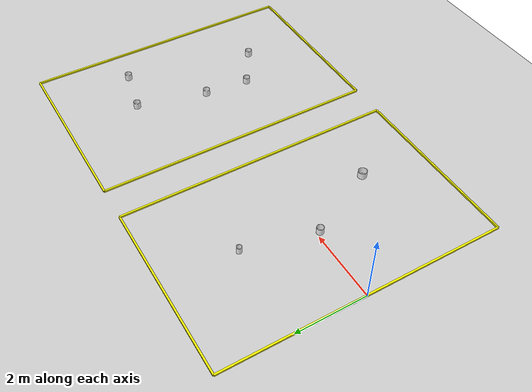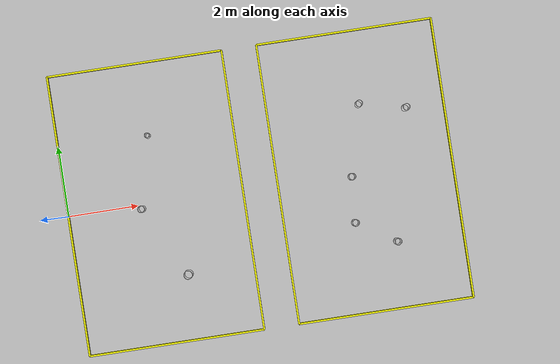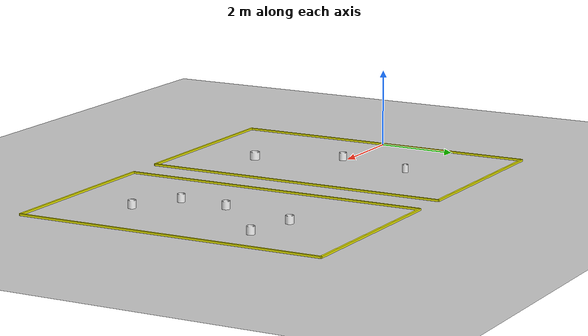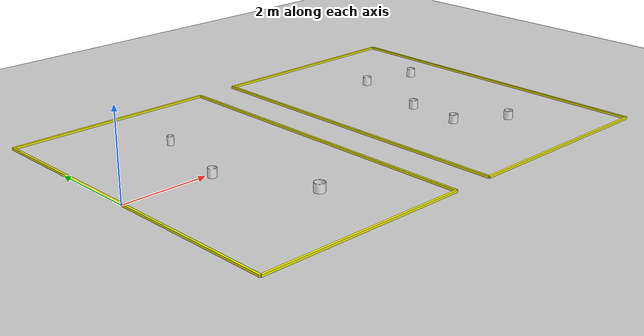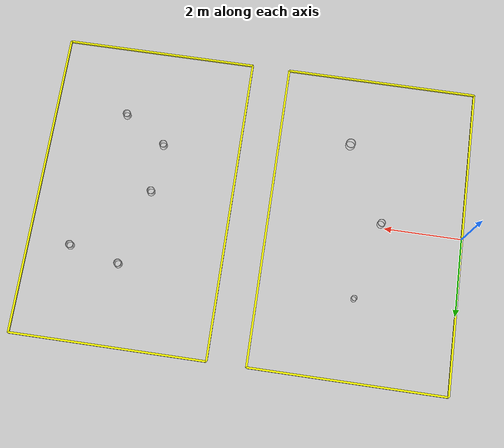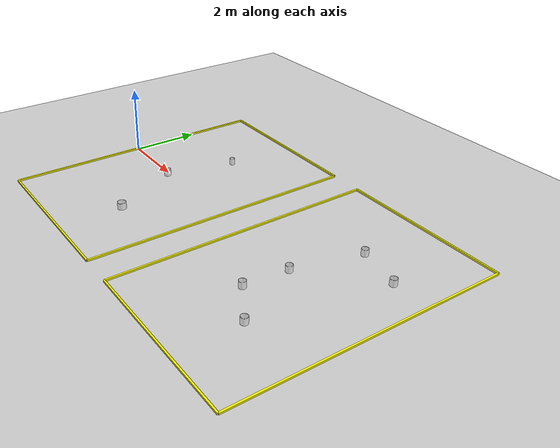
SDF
<?xml version="1.0" encoding="UTF-8"?>
<sdf version="1.9">
  <world name="default">
    <physics type="ode">
      <max_step_size>0.004</max_step_size>
      <real_time_factor>1.0</real_time_factor>
      <real_time_update_rate>250</real_time_update_rate>
    </physics>
    <plugin name="gz::sim::systems::Physics" filename="gz-sim-physics-system"/>
    <plugin name="gz::sim::systems::UserCommands" filename="gz-sim-user-commands-system"/>
    <plugin name="gz::sim::systems::SceneBroadcaster" filename="gz-sim-scene-broadcaster-system"/>
    <plugin name="gz::sim::systems::Contact" filename="gz-sim-contact-system"/>
    <plugin name="gz::sim::systems::Imu" filename="gz-sim-imu-system"/>
    <plugin name="gz::sim::systems::AirPressure" filename="gz-sim-air-pressure-system"/>
    <plugin name="gz::sim::systems::ApplyLinkWrench" filename="gz-sim-apply-link-wrench-system"/>
    <plugin name="gz::sim::systems::NavSat" filename="gz-sim-navsat-system"/>
    <plugin name="gz::sim::systems::Sensors" filename="gz-sim-sensors-system">
      <render_engine>ogre2</render_engine>
    </plugin>
    <gui fullscreen="false">
      <!-- 3D scene -->
      <plugin filename="MinimalScene" name="3D View">
        <gz-gui>
          <title>3D View</title>
          <property type="bool" key="showTitleBar">false</property>
          <property type="string" key="state">docked</property>
        </gz-gui>
        <engine>ogre2</engine>
        <scene>scene</scene>
        <ambient_light>0.4 0.4 0.4</ambient_light>
        <background_color>0.8 0.8 0.8</background_color>
        <camera_pose>-6 0 6 0 0.5 0</camera_pose>
        <camera_clip>
          <near>0.25</near>
          <far>25000</far>
        </camera_clip>
      </plugin>
      <!-- Plugins that add functionality to the scene -->
      <plugin filename="EntityContextMenuPlugin" name="Entity context menu">
        <gz-gui>
          <property key="state" type="string">floating</property>
          <property key="width" type="double">5</property>
          <property key="height" type="double">5</property>
          <property key="showTitleBar" type="bool">false</property>
        </gz-gui>
      </plugin>
      <plugin filename="GzSceneManager" name="Scene Manager">
        <gz-gui>
          <property key="resizable" type="bool">false</property>
          <property key="width" type="double">5</property>
          <property key="height" type="double">5</property>
          <property key="state" type="string">floating</property>
          <property key="showTitleBar" type="bool">false</property>
        </gz-gui>
      </plugin>
      <plugin filename="InteractiveViewControl" name="Interactive view control">
        <gz-gui>
          <property key="resizable" type="bool">false</property>
          <property key="width" type="double">5</property>
          <property key="height" type="double">5</property>
          <property key="state" type="string">floating</property>
          <property key="showTitleBar" type="bool">false</property>
        </gz-gui>
      </plugin>
      <plugin filename="CameraTracking" name="Camera Tracking">
        <gz-gui>
          <property key="resizable" type="bool">false</property>
          <property key="width" type="double">5</property>
          <property key="height" type="double">5</property>
          <property key="state" type="string">floating</property>
          <property key="showTitleBar" type="bool">false</property>
        </gz-gui>
      </plugin>
      <plugin filename="MarkerManager" name="Marker manager">
        <gz-gui>
          <property key="resizable" type="bool">false</property>
          <property key="width" type="double">5</property>
          <property key="height" type="double">5</property>
          <property key="state" type="string">floating</property>
          <property key="showTitleBar" type="bool">false</property>
        </gz-gui>
      </plugin>
      <plugin filename="SelectEntities" name="Select Entities">
        <gz-gui>
          <anchors target="Select entities">
            <line own="right" target="right"/>
            <line own="top" target="top"/>
          </anchors>
          <property key="resizable" type="bool">false</property>
          <property key="width" type="double">5</property>
          <property key="height" type="double">5</property>
          <property key="state" type="string">floating</property>
          <property key="showTitleBar" type="bool">false</property>
        </gz-gui>
      </plugin>
      <plugin filename="VisualizationCapabilities" name="Visualization Capabilities">
        <gz-gui>
          <property key="resizable" type="bool">false</property>
          <property key="width" type="double">5</property>
          <property key="height" type="double">5</property>
          <property key="state" type="string">floating</property>
          <property key="showTitleBar" type="bool">false</property>
        </gz-gui>
      </plugin>
      <plugin filename="Spawn" name="Spawn Entities">
        <gz-gui>
          <anchors target="Select entities">
            <line own="right" target="right"/>
            <line own="top" target="top"/>
          </anchors>
          <property key="resizable" type="bool">false</property>
          <property key="width" type="double">5</property>
          <property key="height" type="double">5</property>
          <property key="state" type="string">floating</property>
          <property key="showTitleBar" type="bool">false</property>
        </gz-gui>
      </plugin>
      <plugin name="World control" filename="WorldControl">
        <gz-gui>
          <title>World control</title>
          <property type="bool" key="showTitleBar">0</property>
          <property type="bool" key="resizable">0</property>
          <property type="double" key="height">72</property>
          <property type="double" key="width">121</property>
          <property type="double" key="z">1</property>
          <property type="string" key="state">floating</property>
          <anchors target="3D View">
            <line own="left" target="left"/>
            <line own="bottom" target="bottom"/>
          </anchors>
        </gz-gui>
        <play_pause>1</play_pause>
        <step>1</step>
        <start_paused>1</start_paused>
      </plugin>
      <plugin name="World stats" filename="WorldStats">
        <gz-gui>
          <title>World stats</title>
          <property type="bool" key="showTitleBar">0</property>
          <property type="bool" key="resizable">0</property>
          <property type="double" key="height">110</property>
          <property type="double" key="width">290</property>
          <property type="double" key="z">1</property>
          <property type="string" key="state">floating</property>
          <anchors target="3D View">
            <line own="right" target="right"/>
            <line own="bottom" target="bottom"/>
          </anchors>
        </gz-gui>
        <sim_time>1</sim_time>
        <real_time>1</real_time>
        <real_time_factor>1</real_time_factor>
        <iterations>1</iterations>
      </plugin>
      <plugin name="Entity tree" filename="EntityTree"/>
    </gui>

    <gravity>0 0 -9.8</gravity>
    <magnetic_field>6e-06 2.3e-05 -4.2e-05</magnetic_field>
    <atmosphere type="adiabatic"/>
    <scene>
      <grid>false</grid>
      <ambient>0.4 0.4 0.4 1</ambient>
      <background>0.7 0.7 0.7 1</background>
      <shadows>true</shadows>
    </scene>
    <model name="ground_plane">
      <static>true</static>
      <link name="link">
        <collision name="collision">
          <geometry>
            <plane>
              <normal>0 0 1</normal>
              <size>1 1</size>
            </plane>
          </geometry>
          <surface>
            <friction>
              <ode/>
            </friction>
            <bounce/>
            <contact/>
          </surface>
        </collision>
        <visual name="visual">
          <geometry>
            <plane>
              <normal>0 0 1</normal>
              <size>100 100</size>
            </plane>
          </geometry>
          <material>
            <ambient>0.8 0.8 0.8 1</ambient>
            <diffuse>0.8 0.8 0.8 1</diffuse>
            <specular>0.8 0.8 0.8 1</specular>
          </material>
        </visual>
        <pose>0 0 0 0 -0 0</pose>
        <inertial>
          <pose>0 0 0 0 -0 0</pose>
          <mass>1</mass>
          <inertia>
            <ixx>1</ixx>
            <ixy>0</ixy>
            <ixz>0</ixz>
            <iyy>1</iyy>
            <iyz>0</iyz>
            <izz>1</izz>
          </inertia>
        </inertial>
        <enable_wind>false</enable_wind>
      </link>
      <pose>0 0 0 0 -0 0</pose>
      <self_collide>false</self_collide>
    </model>
    <light name="sunUTC" type="directional">
      <pose>0 0 500 0 -0 0</pose>
      <cast_shadows>true</cast_shadows>
      <intensity>1</intensity>
      <direction>0.001 0.625 -0.78</direction>
      <diffuse>0.904 0.904 0.904 1</diffuse>
      <specular>0.271 0.271 0.271 1</specular>
      <attenuation>
        <range>2000</range>
        <linear>0</linear>
        <constant>1</constant>
        <quadratic>0</quadratic>
      </attenuation>
      <spot>
        <inner_angle>0</inner_angle>
        <outer_angle>0</outer_angle>
        <falloff>0</falloff>
      </spot>
    </light>
    <spherical_coordinates>
      <surface_model>EARTH_WGS84</surface_model>
      <world_frame_orientation>ENU</world_frame_orientation>
      <latitude_deg>24.711733</latitude_deg>
      <longitude_deg>118.431692</longitude_deg>  <!--此处将经纬度设置为国内的一个学校操场-->
      <elevation>0</elevation>
    </spherical_coordinates>
    <model name='target_area'>
      <pose>2.5 0 0 0 0 0</pose> <!-- 世界坐标: X=2.5m, Y=0, Z=0 -->

      <include>
        <uri>model://cylinder_large</uri>
        <name>large_cylinder_instance_1</name>
        <!-- 相对姿态: 在父模型中心的基础上向前0.5m, 向左2.0m -->
        <pose>0.5 -2.0 0 1.5708 0 0</pose>
      </include>

      <include>
        <uri>model://cylinder_middle</uri>
        <name>middle_cylinder_instance_1</name>
        <!-- 相对姿态: 在父模型中心的基础上向前1.5m, Y不变 -->
        <pose>-0.5 0.0 0 1.5708 0 0</pose>
      </include>

      <include>
        <uri>model://cylinder_small</uri>
        <name>small_cylinder_instance_1</name>
        <!-- 相对姿态: 在父模型中心的基础上Y向右2.0m, X不变 -->
        <pose>0 2.0 0 1.5708 0 0</pose>
      </include>

      <model name='yellow_boundary_box_child'>
        <static>true</static>
        <!-- 相对姿态: 就在父模型的中心 -->
        <pose>0 0 0.025 0 0 0</pose>

        <link name='line_back'>
          <pose>-2.5 0 0 0 0 0</pose>
          <visual name='visual'>
            <geometry><box><size>0.05 8.0 0.05</size></box></geometry>
            <material><ambient>1 1 0 1</ambient><diffuse>1 1 0 1</diffuse></material>
          </visual>
        </link>
        <link name='line_front'>
          <pose>2.5 0 0 0 0 0</pose>
          <visual name='visual'>
            <geometry><box><size>0.05 8.0 0.05</size></box></geometry>
            <material><ambient>1 1 0 1</ambient><diffuse>1 1 0 1</diffuse></material>
          </visual>
        </link>
        <link name='line_left'>
          <pose>0 -4.0 0 0 0 0</pose>
          <visual name='visual'>
            <geometry><box><size>5.0 0.05 0.05</size></box></geometry>
            <material><ambient>1 1 0 1</ambient><diffuse>1 1 0 1</diffuse></material>
          </visual>
        </link>
        <link name='line_right'>
          <pose>0 4.0 0 0 0 0</pose>
          <visual name='visual'>
            <geometry><box><size>5.0 0.05 0.05</size></box></geometry>
            <material><ambient>1 1 0 1</ambient><diffuse>1 1 0 1</diffuse></material>
          </visual>
        </link>
      </model>

    </model>

    <model name='target_area2'>
      <pose>8.5 0 0 0 0 0</pose> <!-- 世界坐标: X=8.5m, Y=0, Z=0 -->

      <include>
        <uri>model://cylinder_middle</uri>
        <name>middle_cylinder_instance_1</name>
        <!-- 相对姿态: 在父模型中心的基础上向前0.5m, 向左2.0m -->
        <pose>0.5 -2.0 0 1.5708 0 0</pose>
      </include>

      <include>
        <uri>model://cylinder_middle</uri>
        <name>middle_cylinder_instance_2</name>
        <!-- 相对姿态: 在父模型中心的基础上向前1.5m, Y不变 -->
        <pose>-0.5 0.0 0 1.5708 0 0</pose>
      </include>

      <include>
        <uri>model://cylinder_middle</uri>
        <name>middle_cylinder_instance_3</name>
        <!-- 相对姿态: 在父模型中心的基础上Y向右2.0m, X不变 -->
        <pose>0 2.0 0 1.5708 0 0</pose>
      </include>

      <include>
        <uri>model://cylinder_middle</uri>
        <name>middle_cylinder_instance_4</name>
        <!-- 相对姿态: 在父模型中心的基础上Y向右2.0m, X不变 -->
        <pose>1.3 1.7 0 1.5708 0 0</pose>
      </include>

      <include>
        <uri>model://cylinder_middle</uri>
        <name>middle_cylinder_instance_5</name>
        <!-- 相对姿态: 在父模型中心的基础上Y向右2.0m, X不变 -->
        <pose>-0.6 -1.3 0 1.5708 0 0</pose>
      </include>

      <model name='yellow_boundary_box_child'>
        <static>true</static>
        <!-- 相对姿态: 就在父模型的中心 -->
        <pose>0 0 0.025 0 0 0</pose>

        <link name='line_back'>
          <pose>-2.5 0 0 0 0 0</pose>
          <visual name='visual'>
            <geometry><box><size>0.05 8.0 0.05</size></box></geometry>
            <material><ambient>1 1 0 1</ambient><diffuse>1 1 0 1</diffuse></material>
          </visual>
        </link>
        <link name='line_front'>
          <pose>2.5 0 0 0 0 0</pose>
          <visual name='visual'>
            <geometry><box><size>0.05 8.0 0.05</size></box></geometry>
            <material><ambient>1 1 0 1</ambient><diffuse>1 1 0 1</diffuse></material>
          </visual>
        </link>
        <link name='line_left'>
          <pose>0 -4.0 0 0 0 0</pose>
          <visual name='visual'>
            <geometry><box><size>5.0 0.05 0.05</size></box></geometry>
            <material><ambient>1 1 0 1</ambient><diffuse>1 1 0 1</diffuse></material>
          </visual>
        </link>
        <link name='line_right'>
          <pose>0 4.0 0 0 0 0</pose>
          <visual name='visual'>
            <geometry><box><size>5.0 0.05 0.05</size></box></geometry>
            <material><ambient>1 1 0 1</ambient><diffuse>1 1 0 1</diffuse></material>
          </visual>
        </link>
      </model>

    </model>

  </world>
</sdf>

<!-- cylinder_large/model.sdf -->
<sdf version="1.9">
  <model name="cylinder_large">
    <static>true</static>
    <link name="link">
      <collision name="collision">
        <geometry>
          <mesh>
            <uri>model://cylinder_large/meshes/big.stl</uri>
	    <scale>0.001 0.001 0.001</scale>
          </mesh>
        </geometry>
      </collision>
      <visual name="visual">
        <geometry>
          <mesh>
            <uri>model://cylinder_large/meshes/big.stl</uri>
	    <scale>0.001 0.001 0.001</scale>
          </mesh>
        </geometry>
        <material>
          <ambient>1 1 1 1</ambient>
          <diffuse>1 1 1 1</diffuse>
        </material>
      </visual>
    </link>
  </model>
</sdf>

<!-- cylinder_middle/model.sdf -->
<sdf version="1.9">
  <model name="cylinder_middle">
    <static>true</static>
    <link name="link">
      <collision name="collision">
        <geometry>
          <mesh>
            <uri>model://cylinder_middle/meshes/middle.stl</uri>
	    <scale>0.001 0.001 0.001</scale>
          </mesh>
        </geometry>
      </collision>
      <visual name="visual">
        <geometry>
          <mesh>
            <uri>model://cylinder_middle/meshes/middle.stl</uri>
	    <scale>0.001 0.001 0.001</scale>
          </mesh>
        </geometry>
        <material>
          <ambient>1 1 1 1</ambient>
          <diffuse>1 1 1 1</diffuse>
        </material>
      </visual>
    </link>
  </model>
</sdf>

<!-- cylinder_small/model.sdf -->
<sdf version="1.9">
  <model name="cylinder_small">
    <static>true</static>
    <link name="link">
      <collision name="collision">
        <geometry>
          <mesh>
            <uri>model://cylinder_small/meshes/small.stl</uri>
	    <scale>0.001 0.001 0.001</scale>
          </mesh>
        </geometry>
      </collision>
      <visual name="visual">
        <geometry>
          <mesh>
            <uri>model://cylinder_small/meshes/small.stl</uri>
	    <scale>0.001 0.001 0.001</scale>
          </mesh>
        </geometry>
        <material>
          <ambient>1 1 1 1</ambient>
          <diffuse>1 1 1 1</diffuse>
        </material>
      </visual>
    </link>
  </model>
</sdf>
